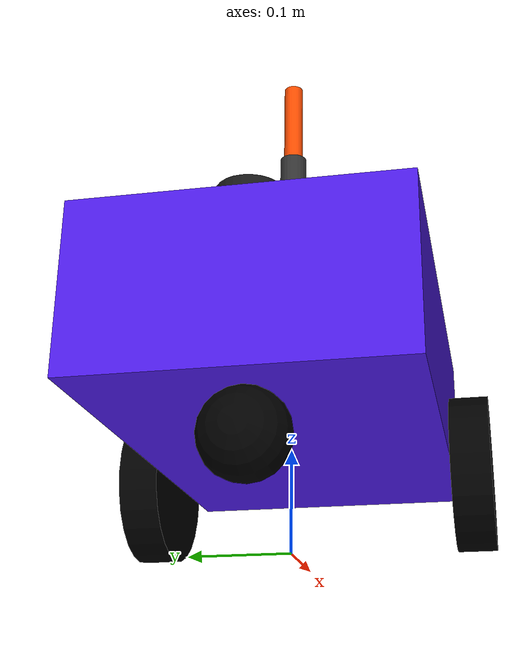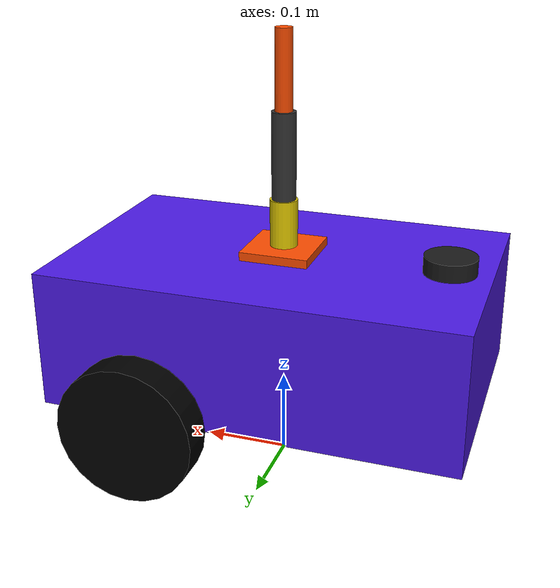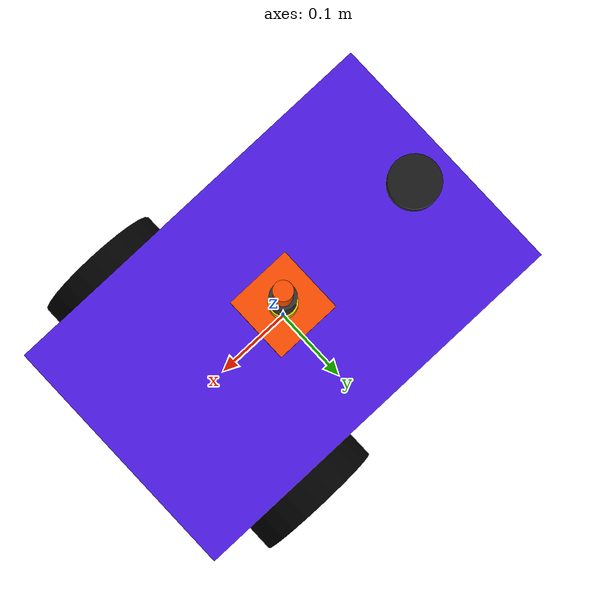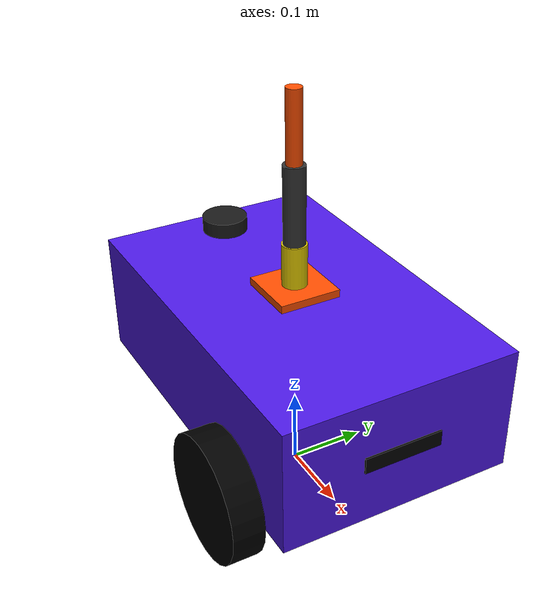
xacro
<?xml version="1.0" encoding="UTF-8"?>
<robot xmlns:xacro="http://www.ros.org/wiki/xacro" name="mobilrobot">
    <xacro:include filename="commonproperties.urdf.xacro"/>
    <xacro:include filename="arm.xacro"/>
    <xacro:include filename="gazebo.xacro"/>
    <xacro:include filename="camera.xacro"/>

    <xacro:include filename="lidar.xacro" />
    <xacro:include filename="mobilrobot.ros2_control.xacro"/>

    <!-- to define a variable-->
    <link name="base_footprint"/>

    <link name="base_link">
        <visual>
            <geometry>
                <!-- use the variable here-->
                <box size="${car_length} ${car_width} ${car_thick}"/>
            </geometry>
            <origin xyz="0.0 0.0 ${car_thick/2}" rpy="0.0 0.0 0.0"/>
            <material name="wierd"/>
        </visual>
        <collision>
            <geometry>
                <box size="${car_length} ${car_width} ${car_thick}"/>
            </geometry>
            <origin xyz="0.0 0.0 ${car_thick/2}" rpy="0.0 0.0 0.0"/>
        </collision>
        <xacro:define_box_inertia m="2"  x="${car_length}" y="${car_width}" z="${car_thick}"
        o_xyz="0.0 0.0 ${car_thick/2}" o_rpy="0.0 0.0 0.0"/>
    </link>
    <link name="wheel1_link">
        <visual>
            <geometry>
                <cylinder radius="${wheel_radius}" length="${wheel_radius/2}"/>
            </geometry>
            <origin xyz="0.0 0.0 ${-wheel_radius/4}" rpy="0.0 0.0 0.0"/>
            <material name="black"/>
        </visual>
         <collision>
            <geometry>
                <sphere radius="${wheel_radius}"/>
            </geometry>
            <origin xyz="0.0 0.0 ${-wheel_radius/4}" rpy="0.0 0.0 0.0"/>
        </collision>
        <xacro:define_cylinder_inertia m="0.1" r="${wheel_radius}" l="${wheel_radius/2}" o_xyz="0.0 0.0 ${-wheel_radius/4}" o_rpy="0.0 0.0 0.0"/>
    </link>
    <link name="wheel2_link">
        <visual>
            <geometry>
                <cylinder radius="${wheel_radius}" length="${wheel_radius/2}"/>
            </geometry>
            <origin xyz="0.0 0.0 ${wheel_radius/4}" rpy="0.0 0.0 0.0"/>
            <material name="black"/>
        </visual>
        <collision>
            <geometry>
                <sphere radius="${wheel_radius}"/>
            </geometry>
            <origin xyz="0.0 0.0 ${wheel_radius/4}" rpy="0.0 0.0 0.0"/>
        </collision>
        <xacro:define_cylinder_inertia m="0.1" r="${wheel_radius}" l="${wheel_radius/2}" o_xyz="0.0 0.0 ${wheel_radius/4}" o_rpy="0.0 0.0 0.0"/>
    </link>
    <link name="caster_wheel_link">
        <visual>
            <geometry>
                <sphere radius="${wheel_radius/2}"/>
            </geometry>
            <origin xyz="0.0 0.0 0.0" rpy="0.0 0.0 0.0"/>
            <material name="black"/>
        </visual>
        <collision>
            <geometry>
                <sphere radius="${wheel_radius/2}"/>
            </geometry>
            <origin xyz="0.0 0.0 0.0" rpy="0.0 0.0 0.0"/>
        </collision>
        <xacro:define_sphere_inertia m="0.1" r="${wheel_radius/2}" o_xyz="0.0 0.0 0.0" o_rpy="0.0 0.0 0.0"/>
    </link>
    <joint name="base_joint" type="fixed">
        <parent link="base_footprint"/>
        <child link="base_link"/>
        <origin xyz="0.0 0.0 0.1" rpy="0.0 0.0 0.0"/>
    </joint>

    <joint name="base_wheel1_joint" type="continuous">
        <parent link="base_link"/>
        <child link="wheel1_link"/>
        <axis xyz="0.0 0.0 1.0"/>
        <origin xyz="${car_length/2.0 - car_length/4} ${car_width/2.0} 0" rpy="${pi/2.0} 0.0 0.0 "/>
    </joint>
    <joint name="base_wheel2_joint" type="continuous">
        <parent link="base_link"/>
        <child link="wheel2_link"/>
        <axis xyz="0.0 0.0 1.0"/>
        <origin xyz="${car_length/2.0 - car_length/4} ${-car_width/2.0} 0" rpy="${pi/2.0} 0.0 0.0"/>
    </joint>
    <joint name="caster_wheel_joint" type="fixed">
        <parent link="base_link"/>
        <child link="caster_wheel_link"/>
        <origin xyz="${-car_length/2.0 + car_length/10.0} 0.0  ${-wheel_radius/2.0}" rpy="0.0 ${pi/2.0} 0.0"/>
    </joint>
</robot>

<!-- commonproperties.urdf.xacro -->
<robot xmlns:xacro="http://www.ros.org/wiki/xacro" name="robot_name">
    <xacro:macro name="define_box_inertia" params="m x y z o_xyz o_rpy">
        <inertial>
            <mass value="${m}"/>
            <inertia ixx="${m*(y*y + z*z)/12}"
                ixy="0.0" ixz="0.0" iyy="${m*(x*x + z*z)/12}"
                iyz="0.0" izz="${m*(y*y + x*x)/12}"/>
            <origin xyz="${o_xyz}" rpy="${o_rpy}"/>
        </inertial>
    </xacro:macro>
    <xacro:macro name="define_sphere_inertia" params="m r o_xyz o_rpy" >
        <inertial>
            <mass value="${m}"/>
            <inertia ixx="${2*m*r*r/5}" ixy="0.0" ixz="0.0"
             iyy="${2.0*m*r*r/5}" iyz="0.0" izz="${2.0*m*r*r/5}"/>
        </inertial>

    </xacro:macro>
    <xacro:macro name="define_cylinder_inertia" params="m r l o_xyz o_rpy" >
        <inertial>
            <mass value="${m}"/>
            <inertia ixx="${m*(3.0*r*r + l*l)/12}" ixy="0.0" ixz="0.0"
             iyy="${m*(3.0*r*r + l*l)/12}" iyz="0.0" izz="${0.5*m*r*r}"/>
            <origin xyz="${o_xyz}" rpy="${o_rpy}"/>
        </inertial>
    </xacro:macro>

    <material name="wierd">
        <color rgba="0.3 0.1 0.9 1"/>
    </material>
    <material name="black">
        <color rgba="0.0 0.0 0.0 1.0"/>
    </material>
    <material name="cam_col">
        <color rgba="0.01 0.01 0.01 1.0"/>
    </material>

    <xacro:property name="car_length" value="0.48"/>
    <xacro:property name="car_width" value="0.3"/>
    <xacro:property name="car_thick" value="0.16"/>
    <xacro:property name="wheel_radius" value="0.08"/>
</robot>

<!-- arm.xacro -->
<robot xmlns:xacro="http://www.ros.org/wiki/xacro">

    <material name="orange">
        <color rgba="0.99 0.3 0.0 1.0"/>
    </material>
    <material name="yellow">
        <color rgba="0.9 0.8 0.0 1.0"/>
    </material>
     <material name="grey">
        <color rgba="0.2 0.2 0.2 1.0"/>
    </material>
    <xacro:property name="base_x_y" value="0.08"/>
    <xacro:property name="base_z" value="0.01"/>
    <xacro:property name="first_l" value="0.06"/>
    <xacro:property name="first_r" value="0.016"/>
    <xacro:property name="second_l" value="0.1"/>
    <xacro:property name="second_r" value="0.014"/>
     <xacro:property name="third_l" value="0.09"/>
    <xacro:property name="third_r" value="0.01"/>

    <link name="arm_base_link">
        <visual>
            <geometry>
                <box size="${base_x_y} ${base_x_y} ${base_z}"/>
            </geometry>
            <material name="orange"/>
            <origin xyz="0.0 0.0 ${base_z/2}" rpy="0.0 0.0 0.0"/>
        </visual>
        <collision>
            <geometry>
                <box size="${base_x_y} ${base_x_y} ${base_z}"/>
            </geometry>
            <origin xyz="0.0 0.0 ${base_z/2}" rpy="0.0 0.0 0.0"/>
        </collision>
        <xacro:define_box_inertia m="0.5" x="${base_x_y}" y="${base_x_y}" z="${base_z}" o_xyz="0.0 0.0 ${base_z/2}" o_rpy="0.0 0.0 0.0"/>
    </link>
    <link name="arm_first_link">
        <visual>
            <geometry>
                <cylinder radius="${first_r}" length="${first_l}"/>
            </geometry>
            <material name="yellow"/>
            <origin xyz="0.0 0.0 ${first_l/2}" rpy="0.0 0.0 0.0"/>
        </visual>
        <collision>
             <geometry>
                <cylinder radius="${first_r}" length="${first_l}"/>
            </geometry>
            <origin xyz="0.0 0.0 ${first_l/2}" rpy="0.0 0.0 0.0"/>
        </collision>
        <xacro:define_cylinder_inertia m="0.3" r="${first_r}" l="${first_l}" o_xyz="0.0 0.0 ${first_l/2}" o_rpy="0.0 0.0 0.0" />

    </link>
   <link name="arm_second_link">
        <visual>
            <geometry>
                <cylinder radius="${second_r}" length="${second_l}"/>
            </geometry>
            <material name="grey"/>
            <origin xyz="0.0 0.0 ${second_l/2.0}" rpy="0.0 0.0 0.0"/>
        </visual>
        <collision>
            <geometry>
                <cylinder radius="${second_r}" length="${second_l}"/>
            </geometry>
            <material name="grey"/>
            <origin xyz="0.0 0.0 ${second_l/2.0}" rpy="0.0 0.0 0.0"/>
        </collision>
        <xacro:define_cylinder_inertia m="0.3" r="${second_r}" l="${second_l}" o_xyz="0.0 0.0 ${second_l/2}" o_rpy="0.0 0.0 0.0" />
    </link>
    <link name="arm_third_link">
        <visual>
            <geometry>
                 <cylinder radius="${third_r}" length="${third_l}"/>
            </geometry>
            <material name="orange"/>
            <origin xyz="0.0 0.0 ${third_l/2}" rpy="0.0 0.0 0.0"/>
        </visual>
        <collision>
            <geometry>
                 <cylinder radius="${third_r}" length="${third_l}"/>
            </geometry>
            <material name="orange"/>
            <origin xyz="0.0 0.0 ${third_l/2}" rpy="0.0 0.0 0.0"/>
        </collision>
        <xacro:define_cylinder_inertia m="0.3" r="${third_r}" l="${third_l}" o_xyz="0.0 0.0 ${third_l/2}" o_rpy="0.0 0.0 0.0" />
    </link>
    <joint name="robot_base_arm_base_joint" type="fixed">
        <origin xyz="0.0 0.0 ${car_thick}" rpy="0.0 0.0 0.0"/>
        <parent link="base_link"/>
        <child link="arm_base_link"/>
    </joint>
    <joint name="arm_base_first_joint" type="revolute">
        <parent link="arm_base_link"/>
        <child link="arm_first_link"/>

        <axis xyz="0.0 0.0 1.0"/>
        <limit lower="${-pi}" upper="${pi}" effort="200" velocity="50"/>
        <dynamics damping="0.3" friction="0.2"/>

        <origin xyz="0.0 0.0 ${base_z/2.0}" rpy="0.0 0.0 0.0"/>
    </joint>
    <joint name="first_second_joint" type="revolute">
        <parent link="arm_first_link"/>
        <child link="arm_second_link"/>
        <axis xyz="0.0 1.0 0.0"/>
        <limit lower="${-pi/2}" upper="${pi/2}" effort="300" velocity="100"/>
        <dynamics damping="0.3" friction="0.2"/>
        <origin xyz="0.0 0.0 ${first_l}" rpy="0.0 0.0 0.0"/>
    </joint>
    <joint name="second_third_joint" type="revolute">
        <parent link="arm_second_link"/>
        <child link="arm_third_link"/>
        <axis xyz="0.0 1.0 0.0"/>
        <limit lower="${-pi/2}" upper="${pi/2}" effort="300" velocity="100"/>
        <dynamics damping="0.3" friction="0.2"/>
        <origin xyz="0.0 0.0 ${second_l}" rpy="0.0 0.0 0.0"/>
    </joint>
</robot>

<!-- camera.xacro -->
<robot xmlns:xacro="http://www.ros.org/wiki/xacro">
    <xacro:property name="camera_length" value="0.1"/>
    <xacro:property name="camera_width" value="0.005"/>
    <xacro:property name="camera_height" value="0.02"/>
    <link name="camera_link">
        <visual>
            <geometry>
                <box size="${camera_width} ${camera_length} ${camera_height}"/>
            </geometry>
            <material name="cam_col"/>
        </visual>
        <collision>
            <geometry>
                 <box size="${camera_width} ${camera_length} ${camera_height}"/>
            </geometry>
        </collision>
        <xacro:define_box_inertia  m="0.1" x="${camera_width}" y="${camera_length}" z="${camera_height}" o_xyz="0 0 0" o_rpy="0 0 0" />
    </link>
    <!-- virtual link to link our camera in order to have opencv convention -->
    <link name="camera_optical">

    </link>

    <joint name="base_link_camera_joint" type="fixed">
        <parent link="base_link"/>
        <child link="camera_link"/>
        <origin xyz="${car_length/2}  0.0 ${car_thick/2}" rpy="0.0 0.0 0.0"/>
    </joint>
    <joint name="camera_optical_joint" type="fixed">
        <parent link="camera_link"/>
        <child link="camera_optical"/>
        <origin xyz="0.0 0.0 0.0" rpy="${-pi/2} 0.0 ${-pi/2}"/>
    </joint>

     <gazebo reference="camera_link">
        <sensor name="camera" type="camera">
            <camera>
                <horizontal_fov>1.3962634</horizontal_fov>
                <image>
                    <width>640</width>
                    <height>480</height>
                    <format>R8G8B8</format>
                </image>
                <clip>
                    <near>0.1</near>
                    <far>15</far>
                </clip>
                <noise>
                    <type>gaussian</type>
                    <mean>0.0</mean>
                    <stddev>0.007</stddev>
                </noise>
                <optical_frame_id>camera_optical</optical_frame_id>
                <camera_info_topic>camera/camera_info</camera_info_topic>
            </camera>
            <always_on>1</always_on>
            <update_rate>20</update_rate>
            <visualize>true</visualize>
            <topic>camera/image_raw</topic>
        </sensor>
    </gazebo>

</robot>

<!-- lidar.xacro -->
<robot xmlns:xacro="http://www.ros.org/wiki/xacro" >
    <link name="lidar_link">
        <visual>
            <geometry>
            <cylinder radius="0.03" length="0.04"/>
            </geometry>
            <origin xyz="0.0 0.0 0.0" rpy="0.0 0.0 0.0"/>
            <material name="lidar_disk_color">
                <color rgba="0.1 0.1 0.1 1"/>
            </material>
        </visual>
        <collision>
            <geometry>
            <cylinder radius="0.03" length="0.04"/>
            </geometry>
            <origin xyz="0.0 0.0 0.0" rpy="0.0 0.0 0.0"/>
        </collision>
        <xacro:define_cylinder_inertia m="0.01" r="0.03" l="0.04" o_xyz="-0.01 0.0 0.0" o_rpy="0 0 0" />
    </link>

    <joint name="lidar_joint" type="fixed">
        <parent link="base_link"/>
        <child link="lidar_link"/>
        <origin xyz="${-car_length/2.5} 0.0 ${car_thick}" rpy="0 ${pi} 0"/>
    </joint>
    <gazebo reference="lidar_link">
        <sensor name="gpu_lidar" type="gpu_lidar">
        <lidar>
          <scan>
            <horizontal>
              <samples>90</samples>
              <resolution>1</resolution>
              <min_angle>${-pi/3}</min_angle>
              <max_angle>${pi/3}</max_angle>
            </horizontal>
            <vertical>
              <samples>16</samples>
              <resolution>1</resolution>
              <min_angle>-0.05</min_angle>
              <max_angle>0.05</max_angle>
            </vertical>
          </scan>
          <range>
            <min>0.05</min>
            <max>15</max>
            <resolution>0.01</resolution>
          </range>
          <noise>
            <type>gaussian</type>
            <mean>0</mean>
            <stddev>0.01</stddev>
          </noise>
        </lidar>
        <topic>laser_scan</topic>
        <visualize>true</visualize>
        <update_rate>10</update_rate>
      </sensor>
    </gazebo>
</robot>
